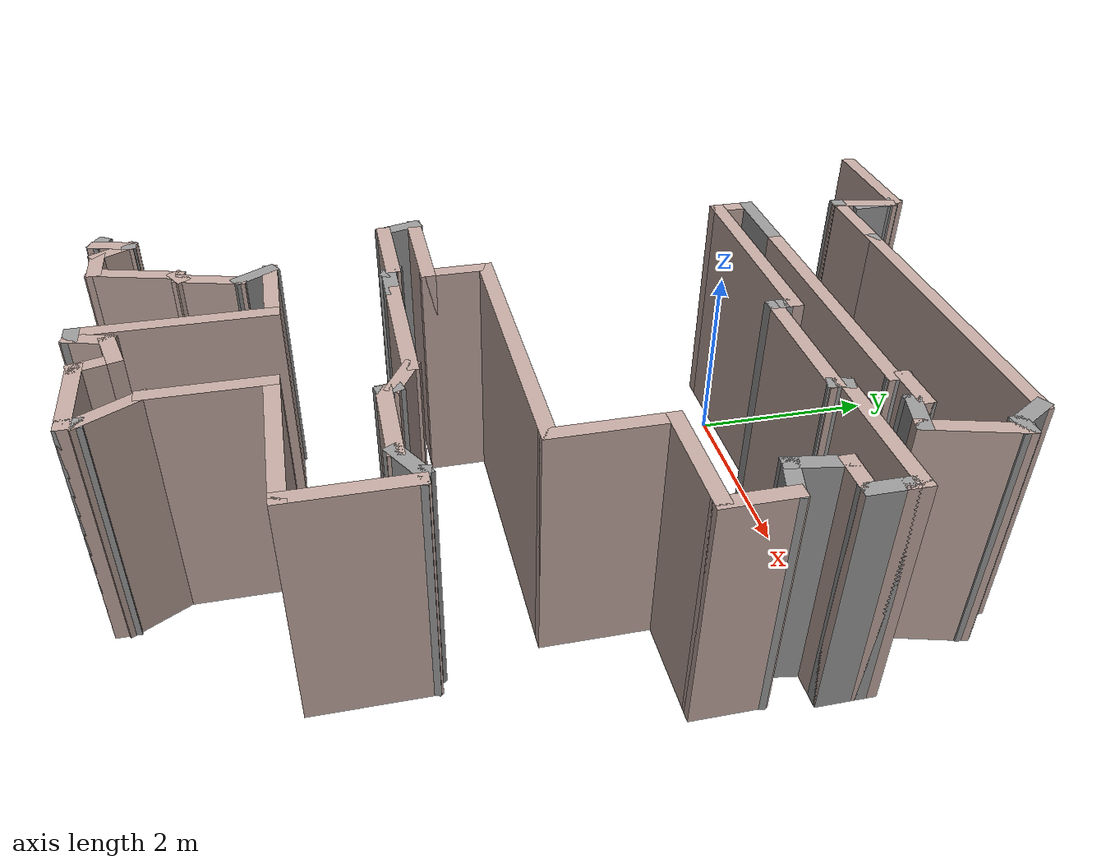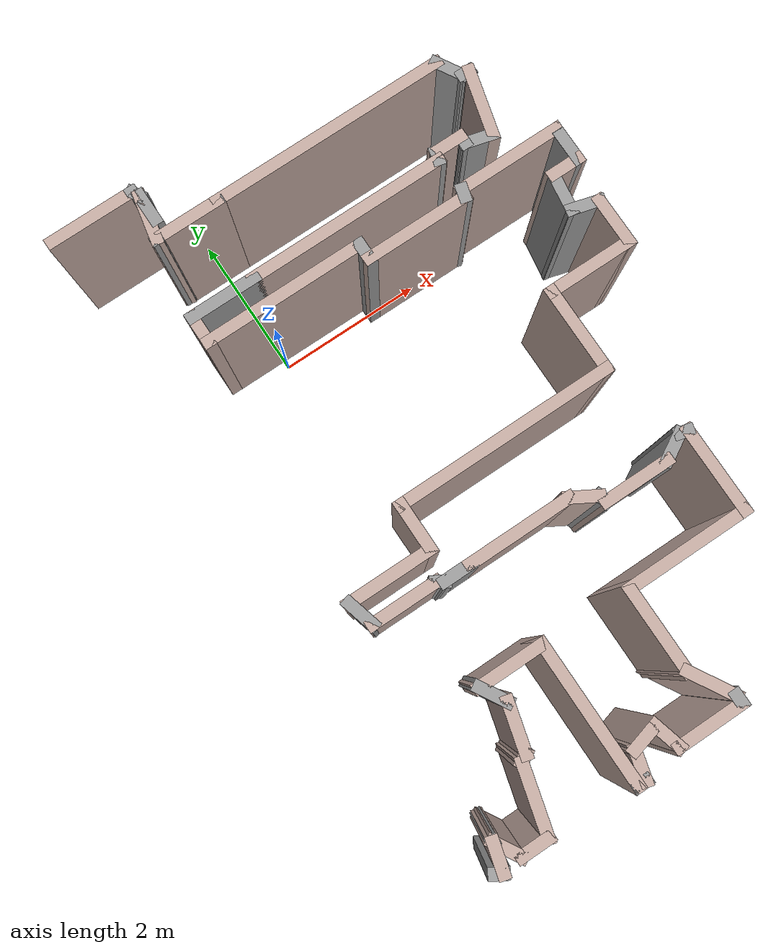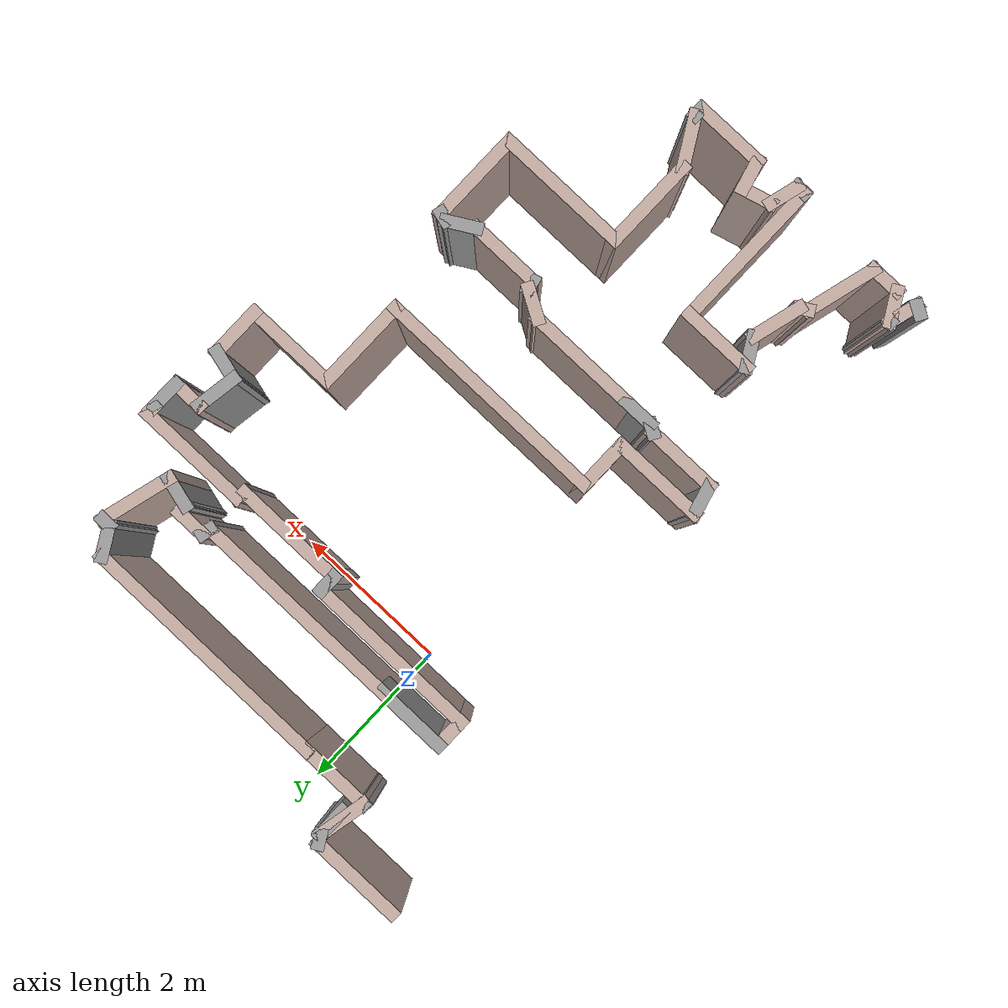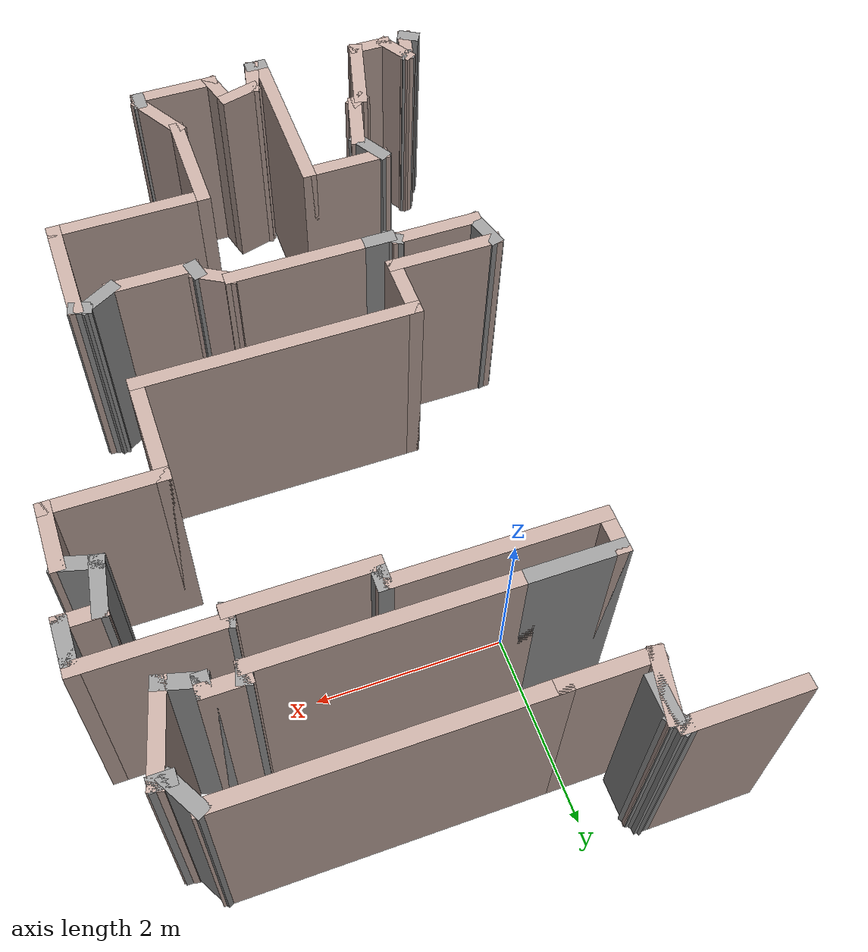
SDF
<sdf version="1.6">
 <model name="map_76">
  <pose>-2.40102 -2.21939 0 0 -0 0</pose>
  <link name="Wall_1">
   <collision name="Wall_1_Collision">
    <geometry><box><size>0.5 0.15 2.5</size></box></geometry>
    <pose>0 0 1.25 0 -0 0</pose>
   </collision>
   <visual name="Wall_1_Visual">
    <pose>0 0 1.25 0 -0 0</pose>
    <geometry><box><size>0.5 0.15 2.5</size></box></geometry>
    <material>
     <script><uri>file://media/materials/scripts/gazebo.material</uri><name>Gazebo/Grey</name></script>
     <ambient>1 1 1 1</ambient>
    </material>
    <meta><layer>0</layer></meta>
   </visual>
   <pose>1.92491 4.16577 0 0 -0 1.5708</pose>
  </link>
  <link name="Wall_100">
   <collision name="Wall_100_Collision">
    <geometry><box><size>0.75 0.15 2.5</size></box></geometry>
    <pose>0 0 1.25 0 -0 0</pose>
   </collision>
   <visual name="Wall_100_Visual">
    <pose>0 0 1.25 0 -0 0</pose>
    <geometry><box><size>0.75 0.15 2.5</size></box></geometry>
    <material>
     <script><uri>file://media/materials/scripts/gazebo.material</uri><name>Gazebo/Grey</name></script>
     <ambient>0.760784 0.662745 0.627451 1</ambient>
    </material>
    <meta><layer>0</layer></meta>
   </visual>
   <pose>4.1977 -3.98758 0 0 -0 2.0944</pose>
  </link>
  <link name="Wall_101">
   <collision name="Wall_101_Collision">
    <geometry><box><size>1.25 0.15 2.5</size></box></geometry>
    <pose>0 0 1.25 0 -0 0</pose>
   </collision>
   <visual name="Wall_101_Visual">
    <pose>0 0 1.25 0 -0 0</pose>
    <geometry><box><size>1.25 0.15 2.5</size></box></geometry>
    <material>
     <script><uri>file://media/materials/scripts/gazebo.material</uri><name>Gazebo/Grey</name></script>
     <ambient>0.760784 0.662745 0.627451 1</ambient>
    </material>
    <meta><layer>0</layer></meta>
   </visual>
   <pose>4.0477 -3.17777 0 0 -0 1.5708</pose>
  </link>
  <link name="Wall_104">
   <collision name="Wall_104_Collision">
    <geometry><box><size>1.75 0.15 2.5</size></box></geometry>
    <pose>0 0 1.25 0 -0 0</pose>
   </collision>
   <visual name="Wall_104_Visual">
    <pose>0 0 1.25 0 -0 0</pose>
    <geometry><box><size>1.75 0.15 2.5</size></box></geometry>
    <material>
     <script><uri>file://media/materials/scripts/gazebo.material</uri><name>Gazebo/Grey</name></script>
     <ambient>0.760784 0.662745 0.627451 1</ambient>
    </material>
    <meta><layer>0</layer></meta>
   </visual>
   <pose>4.8477 -2.62777 0 0 -0 0</pose>
  </link>
  <link name="Wall_105">
   <collision name="Wall_105_Collision">
    <geometry><box><size>1.25 0.15 2.5</size></box></geometry>
    <pose>0 0 1.25 0 -0 0</pose>
   </collision>
   <visual name="Wall_105_Visual">
    <pose>0 0 1.25 0 -0 0</pose>
    <geometry><box><size>1.25 0.15 2.5</size></box></geometry>
    <material>
     <script><uri>file://media/materials/scripts/gazebo.material</uri><name>Gazebo/Grey</name></script>
     <ambient>0.760784 0.662745 0.627451 1</ambient>
    </material>
    <meta><layer>0</layer></meta>
   </visual>
   <pose>5.6477 -2.07777 0 0 -0 1.5708</pose>
  </link>
  <link name="Wall_106">
   <collision name="Wall_106_Collision">
    <geometry><box><size>0.25 0.15 2.5</size></box></geometry>
    <pose>0 0 1.25 0 -0 0</pose>
   </collision>
   <visual name="Wall_106_Visual">
    <pose>0 0 1.25 0 -0 0</pose>
    <geometry><box><size>0.25 0.15 2.5</size></box></geometry>
    <material>
     <script><uri>file://media/materials/scripts/gazebo.material</uri><name>Gazebo/Grey</name></script>
     <ambient>1 1 1 1</ambient>
    </material>
    <meta><layer>0</layer></meta>
   </visual>
   <pose>5.59941 -1.51483 0 0 -0 2.87979</pose>
  </link>
  <link name="Wall_107">
   <collision name="Wall_107_Collision">
    <geometry><box><size>0.5 0.15 2.5</size></box></geometry>
    <pose>0 0 1.25 0 -0 0</pose>
   </collision>
   <visual name="Wall_107_Visual">
    <pose>0 0 1.25 0 -0 0</pose>
    <geometry><box><size>0.5 0.15 2.5</size></box></geometry>
    <material>
     <script><uri>file://media/materials/scripts/gazebo.material</uri><name>Gazebo/Grey</name></script>
     <ambient>1 1 1 1</ambient>
    </material>
    <meta><layer>0</layer></meta>
   </visual>
   <pose>5.39956 -1.58939 0 0 -0 -2.61799</pose>
  </link>
  <link name="Wall_108">
   <collision name="Wall_108_Collision">
    <geometry><box><size>1 0.15 2.5</size></box></geometry>
    <pose>0 0 1.25 0 -0 0</pose>
   </collision>
   <visual name="Wall_108_Visual">
    <pose>0 0 1.25 0 -0 0</pose>
    <geometry><box><size>1 0.15 2.5</size></box></geometry>
    <material>
     <script><uri>file://media/materials/scripts/gazebo.material</uri><name>Gazebo/Grey</name></script>
     <ambient>0.760784 0.662745 0.627451 1</ambient>
    </material>
    <meta><layer>0</layer></meta>
   </visual>
   <pose>4.823 -1.67689 0 0 -0 3.14159</pose>
  </link>
  <link name="Wall_109">
   <collision name="Wall_109_Collision">
    <geometry><box><size>0.25 0.15 2.5</size></box></geometry>
    <pose>0 0 1.25 0 -0 0</pose>
   </collision>
   <visual name="Wall_109_Visual">
    <pose>0 0 1.25 0 -0 0</pose>
    <geometry><box><size>0.25 0.15 2.5</size></box></geometry>
    <material>
     <script><uri>file://media/materials/scripts/gazebo.material</uri><name>Gazebo/Grey</name></script>
     <ambient>1 1 1 1</ambient>
    </material>
    <meta><layer>0</layer></meta>
   </visual>
   <pose>4.38506 -1.62859 0 0 -0 1.8326</pose>
  </link>
  <link name="Wall_110">
   <collision name="Wall_110_Collision">
    <geometry><box><size>0.5 0.15 2.5</size></box></geometry>
    <pose>0 0 1.25 0 -0 0</pose>
   </collision>
   <visual name="Wall_110_Visual">
    <pose>0 0 1.25 0 -0 0</pose>
    <geometry><box><size>0.5 0.15 2.5</size></box></geometry>
    <material>
     <script><uri>file://media/materials/scripts/gazebo.material</uri><name>Gazebo/Grey</name></script>
     <ambient>0.760784 0.662745 0.627451 1</ambient>
    </material>
    <meta><layer>0</layer></meta>
   </visual>
   <pose>4.22057 -1.4928 0 0 -0 2.61799</pose>
  </link>
  <link name="Wall_111">
   <collision name="Wall_111_Collision">
    <geometry><box><size>1.5 0.15 2.5</size></box></geometry>
    <pose>0 0 1.25 0 -0 0</pose>
   </collision>
   <visual name="Wall_111_Visual">
    <pose>0 0 1.25 0 -0 0</pose>
    <geometry><box><size>1.5 0.15 2.5</size></box></geometry>
    <material>
     <script><uri>file://media/materials/scripts/gazebo.material</uri><name>Gazebo/Grey</name></script>
     <ambient>0.760784 0.662745 0.627451 1</ambient>
    </material>
    <meta><layer>0</layer></meta>
   </visual>
   <pose>3.39401 -1.40529 0 0 -0 3.14159</pose>
  </link>
  <link name="Wall_112">
   <collision name="Wall_112_Collision">
    <geometry><box><size>0.5 0.15 2.5</size></box></geometry>
    <pose>0 0 1.25 0 -0 0</pose>
   </collision>
   <visual name="Wall_112_Visual">
    <pose>0 0 1.25 0 -0 0</pose>
    <geometry><box><size>0.5 0.15 2.5</size></box></geometry>
    <material>
     <script><uri>file://media/materials/scripts/gazebo.material</uri><name>Gazebo/Grey</name></script>
     <ambient>1 1 1 1</ambient>
    </material>
    <meta><layer>0</layer></meta>
   </visual>
   <pose>2.54401 -1.40529 0 0 -0 3.14159</pose>
  </link>
  <link name="Wall_113">
   <collision name="Wall_113_Collision">
    <geometry><box><size>0.25 0.15 2.5</size></box></geometry>
    <pose>0 0 1.25 0 -0 0</pose>
   </collision>
   <visual name="Wall_113_Visual">
    <pose>0 0 1.25 0 -0 0</pose>
    <geometry><box><size>0.25 0.15 2.5</size></box></geometry>
    <material>
     <script><uri>file://media/materials/scripts/gazebo.material</uri><name>Gazebo/Grey</name></script>
     <ambient>1 1 1 1</ambient>
    </material>
    <meta><layer>0</layer></meta>
   </visual>
   <pose>2.32571 -1.3803 0 0 -0 2.61799</pose>
  </link>
  <link name="Wall_114">
   <collision name="Wall_114_Collision">
    <geometry><box><size>1 0.15 2.5</size></box></geometry>
    <pose>0 0 1.25 0 -0 0</pose>
   </collision>
   <visual name="Wall_114_Visual">
    <pose>0 0 1.25 0 -0 0</pose>
    <geometry><box><size>1 0.15 2.5</size></box></geometry>
    <material>
     <script><uri>file://media/materials/scripts/gazebo.material</uri><name>Gazebo/Grey</name></script>
     <ambient>0.760784 0.662745 0.627451 1</ambient>
    </material>
    <meta><layer>0</layer></meta>
   </visual>
   <pose>1.85741 -1.35529 0 0 -0 3.14159</pose>
  </link>
  <link name="Wall_115">
   <collision name="Wall_115_Collision">
    <geometry><box><size>0.5 0.15 2.5</size></box></geometry>
    <pose>0 0 1.25 0 -0 0</pose>
   </collision>
   <visual name="Wall_115_Visual">
    <pose>0 0 1.25 0 -0 0</pose>
    <geometry><box><size>0.5 0.15 2.5</size></box></geometry>
    <material>
     <script><uri>file://media/materials/scripts/gazebo.material</uri><name>Gazebo/Grey</name></script>
     <ambient>1 1 1 1</ambient>
    </material>
    <meta><layer>0</layer></meta>
   </visual>
   <pose>1.38712 -1.18626 0 0 -0 1.8326</pose>
  </link>
  <link name="Wall_116">
   <collision name="Wall_116_Collision">
    <geometry><box><size>1.25 0.15 2.5</size></box></geometry>
    <pose>0 0 1.25 0 -0 0</pose>
   </collision>
   <visual name="Wall_116_Visual">
    <pose>0 0 1.25 0 -0 0</pose>
    <geometry><box><size>1.25 0.15 2.5</size></box></geometry>
    <material>
     <script><uri>file://media/materials/scripts/gazebo.material</uri><name>Gazebo/Grey</name></script>
     <ambient>0.760784 0.662745 0.627451 1</ambient>
    </material>
    <meta><layer>0</layer></meta>
   </visual>
   <pose>1.89182 -1.01722 0 0 -0 0</pose>
  </link>
  <link name="Wall_117">
   <collision name="Wall_117_Collision">
    <geometry><box><size>0.75 0.15 2.5</size></box></geometry>
    <pose>0 0 1.25 0 -0 0</pose>
   </collision>
   <visual name="Wall_117_Visual">
    <pose>0 0 1.25 0 -0 0</pose>
    <geometry><box><size>0.75 0.15 2.5</size></box></geometry>
    <material>
     <script><uri>file://media/materials/scripts/gazebo.material</uri><name>Gazebo/Grey</name></script>
     <ambient>0.760784 0.662745 0.627451 1</ambient>
    </material>
    <meta><layer>0</layer></meta>
   </visual>
   <pose>2.44182 -0.717221 0 0 -0 1.5708</pose>
  </link>
  <link name="Wall_118">
   <collision name="Wall_118_Collision">
    <geometry><box><size>3 0.15 2.5</size></box></geometry>
    <pose>0 0 1.25 0 -0 0</pose>
   </collision>
   <visual name="Wall_118_Visual">
    <pose>0 0 1.25 0 -0 0</pose>
    <geometry><box><size>3 0.15 2.5</size></box></geometry>
    <material>
     <script><uri>file://media/materials/scripts/gazebo.material</uri><name>Gazebo/Grey</name></script>
     <ambient>0.760784 0.662745 0.627451 1</ambient>
    </material>
    <meta><layer>0</layer></meta>
   </visual>
   <pose>3.86682 -0.417221 0 0 -0 0</pose>
  </link>
  <link name="Wall_121">
   <collision name="Wall_121_Collision">
    <geometry><box><size>1.25 0.15 2.5</size></box></geometry>
    <pose>0 0 1.25 0 -0 0</pose>
   </collision>
   <visual name="Wall_121_Visual">
    <pose>0 0 1.25 0 -0 0</pose>
    <geometry><box><size>1.25 0.15 2.5</size></box></geometry>
    <material>
     <script><uri>file://media/materials/scripts/gazebo.material</uri><name>Gazebo/Grey</name></script>
     <ambient>0.760784 0.662745 0.627451 1</ambient>
    </material>
    <meta><layer>0</layer></meta>
   </visual>
   <pose>5.29182 0.132779 0 0 -0 1.5708</pose>
  </link>
  <link name="Wall_122">
   <collision name="Wall_122_Collision">
    <geometry><box><size>1.25 0.15 2.5</size></box></geometry>
    <pose>0 0 1.25 0 -0 0</pose>
   </collision>
   <visual name="Wall_122_Visual">
    <pose>0 0 1.25 0 -0 0</pose>
    <geometry><box><size>1.25 0.15 2.5</size></box></geometry>
    <material>
     <script><uri>file://media/materials/scripts/gazebo.material</uri><name>Gazebo/Grey</name></script>
     <ambient>0.760784 0.662745 0.627451 1</ambient>
    </material>
    <meta><layer>0</layer></meta>
   </visual>
   <pose>5.84182 0.682779 0 0 -0 0</pose>
  </link>
  <link name="Wall_125">
   <collision name="Wall_125_Collision">
    <geometry><box><size>0.75 0.15 2.5</size></box></geometry>
    <pose>0 0 1.25 0 -0 0</pose>
   </collision>
   <visual name="Wall_125_Visual">
    <pose>0 0 1.25 0 -0 0</pose>
    <geometry><box><size>0.75 0.15 2.5</size></box></geometry>
    <material>
     <script><uri>file://media/materials/scripts/gazebo.material</uri><name>Gazebo/Grey</name></script>
     <ambient>0.760784 0.662745 0.627451 1</ambient>
    </material>
    <meta><layer>0</layer></meta>
   </visual>
   <pose>6.39182 0.982779 0 0 -0 1.5708</pose>
  </link>
  <link name="Wall_126">
   <collision name="Wall_126_Collision">
    <geometry><box><size>0.5 0.15 2.5</size></box></geometry>
    <pose>0 0 1.25 0 -0 0</pose>
   </collision>
   <visual name="Wall_126_Visual">
    <pose>0 0 1.25 0 -0 0</pose>
    <geometry><box><size>0.5 0.15 2.5</size></box></geometry>
    <material>
     <script><uri>file://media/materials/scripts/gazebo.material</uri><name>Gazebo/Grey</name></script>
     <ambient>1 1 1 1</ambient>
    </material>
    <meta><layer>0</layer></meta>
   </visual>
   <pose>6.22279 1.32807 0 0 -0 2.87979</pose>
  </link>
  <link name="Wall_129">
   <collision name="Wall_129_Collision">
    <geometry><box><size>0.5 0.15 2.5</size></box></geometry>
    <pose>0 0 1.25 0 -0 0</pose>
   </collision>
   <visual name="Wall_129_Visual">
    <pose>0 0 1.25 0 -0 0</pose>
    <geometry><box><size>0.5 0.15 2.5</size></box></geometry>
    <material>
     <script><uri>file://media/materials/scripts/gazebo.material</uri><name>Gazebo/Grey</name></script>
     <ambient>0.760784 0.662745 0.627451 1</ambient>
    </material>
    <meta><layer>0</layer></meta>
   </visual>
   <pose>6.3022 1.84721 0 0 -0 0</pose>
  </link>
  <link name="Wall_130">
   <collision name="Wall_130_Collision">
    <geometry><box><size>0.5 0.15 2.5</size></box></geometry>
    <pose>0 0 1.25 0 -0 0</pose>
   </collision>
   <visual name="Wall_130_Visual">
    <pose>0 0 1.25 0 -0 0</pose>
    <geometry><box><size>0.5 0.15 2.5</size></box></geometry>
    <material>
     <script><uri>file://media/materials/scripts/gazebo.material</uri><name>Gazebo/Grey</name></script>
     <ambient>1 1 1 1</ambient>
    </material>
    <meta><layer>0</layer></meta>
   </visual>
   <pose>6.4772 2.02221 0 0 -0 1.5708</pose>
  </link>
  <link name="Wall_131">
   <collision name="Wall_131_Collision">
    <geometry><box><size>0.15 0.15 2.5</size></box></geometry>
    <pose>0 0 1.25 0 -0 0</pose>
   </collision>
   <visual name="Wall_131_Visual">
    <pose>0 0 1.25 0 -0 0</pose>
    <geometry><box><size>0.15 0.15 2.5</size></box></geometry>
    <material>
     <script><uri>file://media/materials/scripts/gazebo.material</uri><name>Gazebo/Grey</name></script>
     <ambient>1 1 1 1</ambient>
    </material>
    <meta><layer>0</layer></meta>
   </visual>
   <pose>6.4772 2.19721 0 0 -0 0</pose>
  </link>
  <link name="Wall_133">
   <collision name="Wall_133_Collision">
    <geometry><box><size>0.25 0.15 2.5</size></box></geometry>
    <pose>0 0 1.25 0 -0 0</pose>
   </collision>
   <visual name="Wall_133_Visual">
    <pose>0 0 1.25 0 -0 0</pose>
    <geometry><box><size>0.25 0.15 2.5</size></box></geometry>
    <material>
     <script><uri>file://media/materials/scripts/gazebo.material</uri><name>Gazebo/Grey</name></script>
     <ambient>0.760784 0.662745 0.627451 1</ambient>
    </material>
    <meta><layer>0</layer></meta>
   </visual>
   <pose>6.4772 2.24721 0 0 -0 1.5708</pose>
  </link>
  <link name="Wall_134">
   <collision name="Wall_134_Collision">
    <geometry><box><size>1.5 0.15 2.5</size></box></geometry>
    <pose>0 0 1.25 0 -0 0</pose>
   </collision>
   <visual name="Wall_134_Visual">
    <pose>0 0 1.25 0 -0 0</pose>
    <geometry><box><size>1.5 0.15 2.5</size></box></geometry>
    <material>
     <script><uri>file://media/materials/scripts/gazebo.material</uri><name>Gazebo/Grey</name></script>
     <ambient>0.760784 0.662745 0.627451 1</ambient>
    </material>
    <meta><layer>0</layer></meta>
   </visual>
   <pose>5.8022 2.29721 0 0 -0 3.14159</pose>
  </link>
  <link name="Wall_135">
   <collision name="Wall_135_Collision">
    <geometry><box><size>0.25 0.15 2.5</size></box></geometry>
    <pose>0 0 1.25 0 -0 0</pose>
   </collision>
   <visual name="Wall_135_Visual">
    <pose>0 0 1.25 0 -0 0</pose>
    <geometry><box><size>0.25 0.15 2.5</size></box></geometry>
    <material>
     <script><uri>file://media/materials/scripts/gazebo.material</uri><name>Gazebo/Grey</name></script>
     <ambient>1 1 1 1</ambient>
    </material>
    <meta><layer>0</layer></meta>
   </visual>
   <pose>5.11425 2.24892 0 0 -0 -1.8326</pose>
  </link>
  <link name="Wall_136">
   <collision name="Wall_136_Collision">
    <geometry><box><size>1.5 0.15 2.5</size></box></geometry>
    <pose>0 0 1.25 0 -0 0</pose>
   </collision>
   <visual name="Wall_136_Visual">
    <pose>0 0 1.25 0 -0 0</pose>
    <geometry><box><size>1.5 0.15 2.5</size></box></geometry>
    <material>
     <script><uri>file://media/materials/scripts/gazebo.material</uri><name>Gazebo/Grey</name></script>
     <ambient>0.760784 0.662745 0.627451 1</ambient>
    </material>
    <meta><layer>0</layer></meta>
   </visual>
   <pose>4.42631 2.20062 0 0 -0 3.14159</pose>
  </link>
  <link name="Wall_137">
   <collision name="Wall_137_Collision">
    <geometry><box><size>0.25 0.15 2.5</size></box></geometry>
    <pose>0 0 1.25 0 -0 0</pose>
   </collision>
   <visual name="Wall_137_Visual">
    <pose>0 0 1.25 0 -0 0</pose>
    <geometry><box><size>0.25 0.15 2.5</size></box></geometry>
    <material>
     <script><uri>file://media/materials/scripts/gazebo.material</uri><name>Gazebo/Grey</name></script>
     <ambient>1 1 1 1</ambient>
    </material>
    <meta><layer>0</layer></meta>
   </visual>
   <pose>3.75131 2.25062 0 0 -0 1.5708</pose>
  </link>
  <link name="Wall_138">
   <collision name="Wall_138_Collision">
    <geometry><box><size>0.25 0.15 2.5</size></box></geometry>
    <pose>0 0 1.25 0 -0 0</pose>
   </collision>
   <visual name="Wall_138_Visual">
    <pose>0 0 1.25 0 -0 0</pose>
    <geometry><box><size>0.25 0.15 2.5</size></box></geometry>
    <material>
     <script><uri>file://media/materials/scripts/gazebo.material</uri><name>Gazebo/Grey</name></script>
     <ambient>1 1 1 1</ambient>
    </material>
    <meta><layer>0</layer></meta>
   </visual>
   <pose>3.75131 2.35062 0 0 -0 1.5708</pose>
  </link>
  <link name="Wall_139">
   <collision name="Wall_139_Collision">
    <geometry><box><size>2.25 0.15 2.5</size></box></geometry>
    <pose>0 0 1.25 0 -0 0</pose>
   </collision>
   <visual name="Wall_139_Visual">
    <pose>0 0 1.25 0 -0 0</pose>
    <geometry><box><size>2.25 0.15 2.5</size></box></geometry>
    <material>
     <script><uri>file://media/materials/scripts/gazebo.material</uri><name>Gazebo/Grey</name></script>
     <ambient>0.760784 0.662745 0.627451 1</ambient>
    </material>
    <meta><layer>0</layer></meta>
   </visual>
   <pose>2.70131 2.40062 0 0 -0 3.14159</pose>
  </link>
  <link name="Wall_140">
   <collision name="Wall_140_Collision">
    <geometry><box><size>0.5 0.15 2.5</size></box></geometry>
    <pose>0 0 1.25 0 -0 0</pose>
   </collision>
   <visual name="Wall_140_Visual">
    <pose>0 0 1.25 0 -0 0</pose>
    <geometry><box><size>0.5 0.15 2.5</size></box></geometry>
    <material>
     <script><uri>file://media/materials/scripts/gazebo.material</uri><name>Gazebo/Grey</name></script>
     <ambient>0.760784 0.662745 0.627451 1</ambient>
    </material>
    <meta><layer>0</layer></meta>
   </visual>
   <pose>1.65131 2.57562 0 0 -0 1.5708</pose>
  </link>
  <link name="Wall_141">
   <collision name="Wall_141_Collision">
    <geometry><box><size>1 0.15 2.5</size></box></geometry>
    <pose>0 0 1.25 0 -0 0</pose>
   </collision>
   <visual name="Wall_141_Visual">
    <pose>0 0 1.25 0 -0 0</pose>
    <geometry><box><size>1 0.15 2.5</size></box></geometry>
    <material>
     <script><uri>file://media/materials/scripts/gazebo.material</uri><name>Gazebo/Grey</name></script>
     <ambient>1 1 1 1</ambient>
    </material>
    <meta><layer>0</layer></meta>
   </visual>
   <pose>2.07631 2.75062 0 0 -0 0</pose>
  </link>
  <link name="Wall_142">
   <collision name="Wall_142_Collision">
    <geometry><box><size>2.75 0.15 2.5</size></box></geometry>
    <pose>0 0 1.25 0 -0 0</pose>
   </collision>
   <visual name="Wall_142_Visual">
    <pose>0 0 1.25 0 -0 0</pose>
    <geometry><box><size>2.75 0.15 2.5</size></box></geometry>
    <material>
     <script><uri>file://media/materials/scripts/gazebo.material</uri><name>Gazebo/Grey</name></script>
     <ambient>0.760784 0.662745 0.627451 1</ambient>
    </material>
    <meta><layer>0</layer></meta>
   </visual>
   <pose>3.80131 2.75062 0 0 -0 0</pose>
  </link>
  <link name="Wall_143">
   <collision name="Wall_143_Collision">
    <geometry><box><size>0.25 0.15 2.5</size></box></geometry>
    <pose>0 0 1.25 0 -0 0</pose>
   </collision>
   <visual name="Wall_143_Visual">
    <pose>0 0 1.25 0 -0 0</pose>
    <geometry><box><size>0.25 0.15 2.5</size></box></geometry>
    <material>
     <script><uri>file://media/materials/scripts/gazebo.material</uri><name>Gazebo/Grey</name></script>
     <ambient>1 1 1 1</ambient>
    </material>
    <meta><layer>0</layer></meta>
   </visual>
   <pose>5.11425 2.79892 0 0 -0 1.309</pose>
  </link>
  <link name="Wall_144">
   <collision name="Wall_144_Collision">
    <geometry><box><size>0.5 0.15 2.5</size></box></geometry>
    <pose>0 0 1.25 0 -0 0</pose>
   </collision>
   <visual name="Wall_144_Visual">
    <pose>0 0 1.25 0 -0 0</pose>
    <geometry><box><size>0.5 0.15 2.5</size></box></geometry>
    <material>
     <script><uri>file://media/materials/scripts/gazebo.material</uri><name>Gazebo/Grey</name></script>
     <ambient>0.760784 0.662745 0.627451 1</ambient>
    </material>
    <meta><layer>0</layer></meta>
   </visual>
   <pose>5.3022 2.84721 0 0 -0 0</pose>
  </link>
  <link name="Wall_145">
   <collision name="Wall_145_Collision">
    <geometry><box><size>0.25 0.15 2.5</size></box></geometry>
    <pose>0 0 1.25 0 -0 0</pose>
   </collision>
   <visual name="Wall_145_Visual">
    <pose>0 0 1.25 0 -0 0</pose>
    <geometry><box><size>0.25 0.15 2.5</size></box></geometry>
    <material>
     <script><uri>file://media/materials/scripts/gazebo.material</uri><name>Gazebo/Grey</name></script>
     <ambient>1 1 1 1</ambient>
    </material>
    <meta><layer>0</layer></meta>
   </visual>
   <pose>5.4772 2.79721 0 0 -0 -1.5708</pose>
  </link>
  <link name="Wall_146">
   <collision name="Wall_146_Collision">
    <geometry><box><size>0.5 0.15 2.5</size></box></geometry>
    <pose>0 0 1.25 0 -0 0</pose>
   </collision>
   <visual name="Wall_146_Visual">
    <pose>0 0 1.25 0 -0 0</pose>
    <geometry><box><size>0.5 0.15 2.5</size></box></geometry>
    <material>
     <script><uri>file://media/materials/scripts/gazebo.material</uri><name>Gazebo/Grey</name></script>
     <ambient>1 1 1 1</ambient>
    </material>
    <meta><layer>0</layer></meta>
   </visual>
   <pose>5.64623 2.70192 0 0 -0 -0.261799</pose>
  </link>
  <link name="Wall_147">
   <collision name="Wall_147_Collision">
    <geometry><box><size>1 0.15 2.5</size></box></geometry>
    <pose>0 0 1.25 0 -0 0</pose>
   </collision>
   <visual name="Wall_147_Visual">
    <pose>0 0 1.25 0 -0 0</pose>
    <geometry><box><size>1 0.15 2.5</size></box></geometry>
    <material>
     <script><uri>file://media/materials/scripts/gazebo.material</uri><name>Gazebo/Grey</name></script>
     <ambient>0.760784 0.662745 0.627451 1</ambient>
    </material>
    <meta><layer>0</layer></meta>
   </visual>
   <pose>5.92527 3.06714 0 0 -0 1.309</pose>
  </link>
  <link name="Wall_148">
   <collision name="Wall_148_Collision">
    <geometry><box><size>0.25 0.15 2.5</size></box></geometry>
    <pose>0 0 1.25 0 -0 0</pose>
   </collision>
   <visual name="Wall_148_Visual">
    <pose>0 0 1.25 0 -0 0</pose>
    <geometry><box><size>0.25 0.15 2.5</size></box></geometry>
    <material>
     <script><uri>file://media/materials/scripts/gazebo.material</uri><name>Gazebo/Grey</name></script>
     <ambient>1 1 1 1</ambient>
    </material>
    <meta><layer>0</layer></meta>
   </visual>
   <pose>5.98527 3.47766 0 0 -0 3.14159</pose>
  </link>
  <link name="Wall_149">
   <collision name="Wall_149_Collision">
    <geometry><box><size>0.5 0.15 2.5</size></box></geometry>
    <pose>0 0 1.25 0 -0 0</pose>
   </collision>
   <visual name="Wall_149_Visual">
    <pose>0 0 1.25 0 -0 0</pose>
    <geometry><box><size>0.5 0.15 2.5</size></box></geometry>
    <material>
     <script><uri>file://media/materials/scripts/gazebo.material</uri><name>Gazebo/Grey</name></script>
     <ambient>1 1 1 1</ambient>
    </material>
    <meta><layer>0</layer></meta>
   </visual>
   <pose>5.84777 3.62922 0 0 -0 2.0944</pose>
  </link>
  <link name="Wall_150">
   <collision name="Wall_150_Collision">
    <geometry><box><size>3.25 0.15 2.5</size></box></geometry>
    <pose>0 0 1.25 0 -0 0</pose>
   </collision>
   <visual name="Wall_150_Visual">
    <pose>0 0 1.25 0 -0 0</pose>
    <geometry><box><size>3.25 0.15 2.5</size></box></geometry>
    <material>
     <script><uri>file://media/materials/scripts/gazebo.material</uri><name>Gazebo/Grey</name></script>
     <ambient>0.760784 0.662745 0.627451 1</ambient>
    </material>
    <meta><layer>0</layer></meta>
   </visual>
   <pose>4.21027 3.78077 0 0 -0 3.14159</pose>
  </link>
  <link name="Wall_151">
   <collision name="Wall_151_Collision">
    <geometry><box><size>0.15 0.15 2.5</size></box></geometry>
    <pose>0 0 1.25 0 -0 0</pose>
   </collision>
   <visual name="Wall_151_Visual">
    <pose>0 0 1.25 0 -0 0</pose>
    <geometry><box><size>0.15 0.15 2.5</size></box></geometry>
    <material>
     <script><uri>file://media/materials/scripts/gazebo.material</uri><name>Gazebo/Grey</name></script>
     <ambient>1 1 1 1</ambient>
    </material>
    <meta><layer>0</layer></meta>
   </visual>
   <pose>2.66027 3.78077 0 0 -0 0</pose>
  </link>
  <link name="Wall_152">
   <collision name="Wall_152_Collision">
    <geometry><box><size>1 0.15 2.5</size></box></geometry>
    <pose>0 0 1.25 0 -0 0</pose>
   </collision>
   <visual name="Wall_152_Visual">
    <pose>0 0 1.25 0 -0 0</pose>
    <geometry><box><size>1 0.15 2.5</size></box></geometry>
    <material>
     <script><uri>file://media/materials/scripts/gazebo.material</uri><name>Gazebo/Grey</name></script>
     <ambient>0.760784 0.662745 0.627451 1</ambient>
    </material>
    <meta><layer>0</layer></meta>
   </visual>
   <pose>2.23527 3.78077 0 0 -0 3.14159</pose>
  </link>
  <link name="Wall_153">
   <collision name="Wall_153_Collision">
    <geometry><box><size>0.15 0.15 2.5</size></box></geometry>
    <pose>0 0 1.25 0 -0 0</pose>
   </collision>
   <visual name="Wall_153_Visual">
    <pose>0 0 1.25 0 -0 0</pose>
    <geometry><box><size>0.15 0.15 2.5</size></box></geometry>
    <material>
     <script><uri>file://media/materials/scripts/gazebo.material</uri><name>Gazebo/Grey</name></script>
     <ambient>1 1 1 1</ambient>
    </material>
    <meta><layer>0</layer></meta>
   </visual>
   <pose>1.81027 3.78077 0 0 -0 0</pose>
  </link>
  <link name="Wall_154">
   <collision name="Wall_154_Collision">
    <geometry><box><size>0.721615 0.15 2.5</size></box></geometry>
    <pose>0 0 1.25 0 -0 0</pose>
   </collision>
   <visual name="Wall_154_Visual">
    <pose>0 0 1.25 0 -0 0</pose>
    <geometry><box><size>0.721615 0.15 2.5</size></box></geometry>
    <material>
     <script><uri>file://media/materials/scripts/gazebo.material</uri><name>Gazebo/Grey</name></script>
     <ambient>0.760784 0.662745 0.627451 1</ambient>
    </material>
    <meta><layer>0</layer></meta>
   </visual>
   <pose>1.86759 4.06077 0 0 -0 1.36887</pose>
  </link>
  <link name="Wall_157">
   <collision name="Wall_157_Collision">
    <geometry><box><size>0.629505 0.15 2.5</size></box></geometry>
    <pose>0 0 1.25 0 -0 0</pose>
   </collision>
   <visual name="Wall_157_Visual">
    <pose>0 0 1.25 0 -0 0</pose>
    <geometry><box><size>0.629505 0.15 2.5</size></box></geometry>
    <material>
     <script><uri>file://media/materials/scripts/gazebo.material</uri><name>Gazebo/Grey</name></script>
     <ambient>1 1 1 1</ambient>
    </material>
    <meta><layer>0</layer></meta>
   </visual>
   <pose>6.09047 1.61029 0 0 -0 1.41702</pose>
  </link>
  <link name="Wall_2">
   <collision name="Wall_2_Collision">
    <geometry><box><size>0.25 0.15 2.5</size></box></geometry>
    <pose>0 0 1.25 0 -0 0</pose>
   </collision>
   <visual name="Wall_2_Visual">
    <pose>0 0 1.25 0 -0 0</pose>
    <geometry><box><size>0.25 0.15 2.5</size></box></geometry>
    <material>
     <script><uri>file://media/materials/scripts/gazebo.material</uri><name>Gazebo/Grey</name></script>
     <ambient>1 1 1 1</ambient>
    </material>
    <meta><layer>0</layer></meta>
   </visual>
   <pose>1.89991 4.38407 0 0 -0 2.0944</pose>
  </link>
  <link name="Wall_3">
   <collision name="Wall_3_Collision">
    <geometry><box><size>0.15 0.15 2.5</size></box></geometry>
    <pose>0 0 1.25 0 -0 0</pose>
   </collision>
   <visual name="Wall_3_Visual">
    <pose>0 0 1.25 0 -0 0</pose>
    <geometry><box><size>0.15 0.15 2.5</size></box></geometry>
    <material>
     <script><uri>file://media/materials/scripts/gazebo.material</uri><name>Gazebo/Grey</name></script>
     <ambient>1 1 1 1</ambient>
    </material>
    <meta><layer>0</layer></meta>
   </visual>
   <pose>1.87491 4.42738 0 0 -0 0</pose>
  </link>
  <link name="Wall_4">
   <collision name="Wall_4_Collision">
    <geometry><box><size>0.15 0.15 2.5</size></box></geometry>
    <pose>0 0 1.25 0 -0 0</pose>
   </collision>
   <visual name="Wall_4_Visual">
    <pose>0 0 1.25 0 -0 0</pose>
    <geometry><box><size>0.15 0.15 2.5</size></box></geometry>
    <material>
     <script><uri>file://media/materials/scripts/gazebo.material</uri><name>Gazebo/Grey</name></script>
     <ambient>1 1 1 1</ambient>
    </material>
    <meta><layer>0</layer></meta>
   </visual>
   <pose>1.87491 4.42738 0 0 -0 0</pose>
  </link>
  <link name="Wall_5">
   <collision name="Wall_5_Collision">
    <geometry><box><size>1.25 0.15 2.5</size></box></geometry>
    <pose>0 0 1.25 0 -0 0</pose>
   </collision>
   <visual name="Wall_5_Visual">
    <pose>0 0 1.25 0 -0 0</pose>
    <geometry><box><size>1.25 0.15 2.5</size></box></geometry>
    <material>
     <script><uri>file://media/materials/scripts/gazebo.material</uri><name>Gazebo/Grey</name></script>
     <ambient>0.760784 0.662745 0.627451 1</ambient>
    </material>
    <meta><layer>0</layer></meta>
   </visual>
   <pose>1.32491 4.42738 0 0 -0 3.14159</pose>
  </link>
  <link name="Wall_83">
   <collision name="Wall_83_Collision">
    <geometry><box><size>0.25 0.15 2.5</size></box></geometry>
    <pose>0 0 1.25 0 -0 0</pose>
   </collision>
   <visual name="Wall_83_Visual">
    <pose>0 0 1.25 0 -0 0</pose>
    <geometry><box><size>0.25 0.15 2.5</size></box></geometry>
    <material>
     <script><uri>file://media/materials/scripts/gazebo.material</uri><name>Gazebo/Grey</name></script>
     <ambient>1 1 1 1</ambient>
    </material>
    <meta><layer>0</layer></meta>
   </visual>
   <pose>1.08268 -4.35164 0 0 -0 -0.523599</pose>
  </link>
  <link name="Wall_84">
   <collision name="Wall_84_Collision">
    <geometry><box><size>0.5 0.15 2.5</size></box></geometry>
    <pose>0 0 1.25 0 -0 0</pose>
   </collision>
   <visual name="Wall_84_Visual">
    <pose>0 0 1.25 0 -0 0</pose>
    <geometry><box><size>0.5 0.15 2.5</size></box></geometry>
    <material>
     <script><uri>file://media/materials/scripts/gazebo.material</uri><name>Gazebo/Grey</name></script>
     <ambient>0.760784 0.662745 0.627451 1</ambient>
    </material>
    <meta><layer>0</layer></meta>
   </visual>
   <pose>1.17127 -4.2076 0 0 -0 1.309</pose>
  </link>
  <link name="Wall_85">
   <collision name="Wall_85_Collision">
    <geometry><box><size>0.15 0.15 2.5</size></box></geometry>
    <pose>0 0 1.25 0 -0 0</pose>
   </collision>
   <visual name="Wall_85_Visual">
    <pose>0 0 1.25 0 -0 0</pose>
    <geometry><box><size>0.15 0.15 2.5</size></box></geometry>
    <material>
     <script><uri>file://media/materials/scripts/gazebo.material</uri><name>Gazebo/Grey</name></script>
     <ambient>1 1 1 1</ambient>
    </material>
    <meta><layer>0</layer></meta>
   </visual>
   <pose>1.21657 -4.03856 0 0 -0 0</pose>
  </link>
  <link name="Wall_86">
   <collision name="Wall_86_Collision">
    <geometry><box><size>0.5 0.15 2.5</size></box></geometry>
    <pose>0 0 1.25 0 -0 0</pose>
   </collision>
   <visual name="Wall_86_Visual">
    <pose>0 0 1.25 0 -0 0</pose>
    <geometry><box><size>0.5 0.15 2.5</size></box></geometry>
    <material>
     <script><uri>file://media/materials/scripts/gazebo.material</uri><name>Gazebo/Grey</name></script>
     <ambient>0.760784 0.662745 0.627451 1</ambient>
    </material>
    <meta><layer>0</layer></meta>
   </visual>
   <pose>1.30407 -4.19012 0 0 -0 -1.0472</pose>
  </link>
  <link name="Wall_87">
   <collision name="Wall_87_Collision">
    <geometry><box><size>0.5 0.15 2.5</size></box></geometry>
    <pose>0 0 1.25 0 -0 0</pose>
   </collision>
   <visual name="Wall_87_Visual">
    <pose>0 0 1.25 0 -0 0</pose>
    <geometry><box><size>0.5 0.15 2.5</size></box></geometry>
    <material>
     <script><uri>file://media/materials/scripts/gazebo.material</uri><name>Gazebo/Grey</name></script>
     <ambient>0.760784 0.662745 0.627451 1</ambient>
    </material>
    <meta><layer>0</layer></meta>
   </visual>
   <pose>1.56657 -4.34167 0 0 -0 0</pose>
  </link>
  <link name="Wall_88">
   <collision name="Wall_88_Collision">
    <geometry><box><size>1 0.15 2.5</size></box></geometry>
    <pose>0 0 1.25 0 -0 0</pose>
   </collision>
   <visual name="Wall_88_Visual">
    <pose>0 0 1.25 0 -0 0</pose>
    <geometry><box><size>1 0.15 2.5</size></box></geometry>
    <material>
     <script><uri>file://media/materials/scripts/gazebo.material</uri><name>Gazebo/Grey</name></script>
     <ambient>0.760784 0.662745 0.627451 1</ambient>
    </material>
    <meta><layer>0</layer></meta>
   </visual>
   <pose>1.85156 -3.93115 0 0 -0 1.309</pose>
  </link>
  <link name="Wall_89">
   <collision name="Wall_89_Collision">
    <geometry><box><size>0.25 0.15 2.5</size></box></geometry>
    <pose>0 0 1.25 0 -0 0</pose>
   </collision>
   <visual name="Wall_89_Visual">
    <pose>0 0 1.25 0 -0 0</pose>
    <geometry><box><size>0.25 0.15 2.5</size></box></geometry>
    <material>
     <script><uri>file://media/materials/scripts/gazebo.material</uri><name>Gazebo/Grey</name></script>
     <ambient>0.760784 0.662745 0.627451 1</ambient>
    </material>
    <meta><layer>0</layer></meta>
   </visual>
   <pose>2.00486 -3.49564 0 0 -0 0.523599</pose>
  </link>
  <link name="Wall_90">
   <collision name="Wall_90_Collision">
    <geometry><box><size>0.75 0.15 2.5</size></box></geometry>
    <pose>0 0 1.25 0 -0 0</pose>
   </collision>
   <visual name="Wall_90_Visual">
    <pose>0 0 1.25 0 -0 0</pose>
    <geometry><box><size>0.75 0.15 2.5</size></box></geometry>
    <material>
     <script><uri>file://media/materials/scripts/gazebo.material</uri><name>Gazebo/Grey</name></script>
     <ambient>0.760784 0.662745 0.627451 1</ambient>
    </material>
    <meta><layer>0</layer></meta>
   </visual>
   <pose>2.12581 -3.18086 0 0 -0 1.309</pose>
  </link>
  <link name="Wall_91">
   <collision name="Wall_91_Collision">
    <geometry><box><size>0.5 0.15 2.5</size></box></geometry>
    <pose>0 0 1.25 0 -0 0</pose>
   </collision>
   <visual name="Wall_91_Visual">
    <pose>0 0 1.25 0 -0 0</pose>
    <geometry><box><size>0.5 0.15 2.5</size></box></geometry>
    <material>
     <script><uri>file://media/materials/scripts/gazebo.material</uri><name>Gazebo/Grey</name></script>
     <ambient>1 1 1 1</ambient>
    </material>
    <meta><layer>0</layer></meta>
   </visual>
   <pose>2.11596 -2.73953 0 0 -0 2.0944</pose>
  </link>
  <link name="Wall_92">
   <collision name="Wall_92_Collision">
    <geometry><box><size>1 0.15 2.5</size></box></geometry>
    <pose>0 0 1.25 0 -0 0</pose>
   </collision>
   <visual name="Wall_92_Visual">
    <pose>0 0 1.25 0 -0 0</pose>
    <geometry><box><size>1 0.15 2.5</size></box></geometry>
    <material>
     <script><uri>file://media/materials/scripts/gazebo.material</uri><name>Gazebo/Grey</name></script>
     <ambient>0.760784 0.662745 0.627451 1</ambient>
    </material>
    <meta><layer>0</layer></meta>
   </visual>
   <pose>2.45346 -2.58797 0 0 -0 0</pose>
  </link>
  <link name="Wall_93">
   <collision name="Wall_93_Collision">
    <geometry><box><size>2 0.15 2.5</size></box></geometry>
    <pose>0 0 1.25 0 -0 0</pose>
   </collision>
   <visual name="Wall_93_Visual">
    <pose>0 0 1.25 0 -0 0</pose>
    <geometry><box><size>2 0.15 2.5</size></box></geometry>
    <material>
     <script><uri>file://media/materials/scripts/gazebo.material</uri><name>Gazebo/Grey</name></script>
     <ambient>0.760784 0.662745 0.627451 1</ambient>
    </material>
    <meta><layer>0</layer></meta>
   </visual>
   <pose>2.87846 -3.51297 0 0 -0 -1.5708</pose>
  </link>
  <link name="Wall_94">
   <collision name="Wall_94_Collision">
    <geometry><box><size>0.25 0.15 2.5</size></box></geometry>
    <pose>0 0 1.25 0 -0 0</pose>
   </collision>
   <visual name="Wall_94_Visual">
    <pose>0 0 1.25 0 -0 0</pose>
    <geometry><box><size>0.25 0.15 2.5</size></box></geometry>
    <material>
     <script><uri>file://media/materials/scripts/gazebo.material</uri><name>Gazebo/Grey</name></script>
     <ambient>1 1 1 1</ambient>
    </material>
    <meta><layer>0</layer></meta>
   </visual>
   <pose>2.92846 -4.43797 0 0 -0 0</pose>
  </link>
  <link name="Wall_95">
   <collision name="Wall_95_Collision">
    <geometry><box><size>0.5 0.15 2.5</size></box></geometry>
    <pose>0 0 1.25 0 -0 0</pose>
   </collision>
   <visual name="Wall_95_Visual">
    <pose>0 0 1.25 0 -0 0</pose>
    <geometry><box><size>0.5 0.15 2.5</size></box></geometry>
    <material>
     <script><uri>file://media/materials/scripts/gazebo.material</uri><name>Gazebo/Grey</name></script>
     <ambient>0.760784 0.662745 0.627451 1</ambient>
    </material>
    <meta><layer>0</layer></meta>
   </visual>
   <pose>3.02375 -4.26893 0 0 -0 1.309</pose>
  </link>
  <link name="Wall_96">
   <collision name="Wall_96_Collision">
    <geometry><box><size>0.5 0.15 2.5</size></box></geometry>
    <pose>0 0 1.25 0 -0 0</pose>
   </collision>
   <visual name="Wall_96_Visual">
    <pose>0 0 1.25 0 -0 0</pose>
    <geometry><box><size>0.5 0.15 2.5</size></box></geometry>
    <material>
     <script><uri>file://media/materials/scripts/gazebo.material</uri><name>Gazebo/Grey</name></script>
     <ambient>0.760784 0.662745 0.627451 1</ambient>
    </material>
    <meta><layer>0</layer></meta>
   </visual>
   <pose>3.23808 -4.0546 0 0 -0 0.261799</pose>
  </link>
  <link name="Wall_97">
   <collision name="Wall_97_Collision">
    <geometry><box><size>0.5 0.15 2.5</size></box></geometry>
    <pose>0 0 1.25 0 -0 0</pose>
   </collision>
   <visual name="Wall_97_Visual">
    <pose>0 0 1.25 0 -0 0</pose>
    <geometry><box><size>0.5 0.15 2.5</size></box></geometry>
    <material>
     <script><uri>file://media/materials/scripts/gazebo.material</uri><name>Gazebo/Grey</name></script>
     <ambient>0.760784 0.662745 0.627451 1</ambient>
    </material>
    <meta><layer>0</layer></meta>
   </visual>
   <pose>3.45241 -4.17835 0 0 -0 -1.309</pose>
  </link>
  <link name="Wall_98">
   <collision name="Wall_98_Collision">
    <geometry><box><size>1 0.15 2.5</size></box></geometry>
    <pose>0 0 1.25 0 -0 0</pose>
   </collision>
   <visual name="Wall_98_Visual">
    <pose>0 0 1.25 0 -0 0</pose>
    <geometry><box><size>1 0.15 2.5</size></box></geometry>
    <material>
     <script><uri>file://media/materials/scripts/gazebo.material</uri><name>Gazebo/Grey</name></script>
     <ambient>0.760784 0.662745 0.627451 1</ambient>
    </material>
    <meta><layer>0</layer></meta>
   </visual>
   <pose>3.9227 -4.34739 0 0 -0 0</pose>
  </link>
  <link name="Wall_99">
   <collision name="Wall_99_Collision">
    <geometry><box><size>0.25 0.15 2.5</size></box></geometry>
    <pose>0 0 1.25 0 -0 0</pose>
   </collision>
   <visual name="Wall_99_Visual">
    <pose>0 0 1.25 0 -0 0</pose>
    <geometry><box><size>0.25 0.15 2.5</size></box></geometry>
    <material>
     <script><uri>file://media/materials/scripts/gazebo.material</uri><name>Gazebo/Grey</name></script>
     <ambient>1 1 1 1</ambient>
    </material>
    <meta><layer>0</layer></meta>
   </visual>
   <pose>4.3477 -4.29739 0 0 -0 1.5708</pose>
  </link>
  <static>1</static>
 </model>
</sdf>
